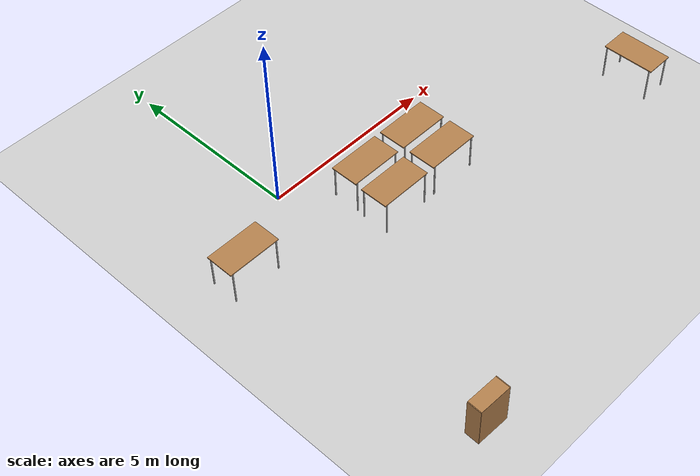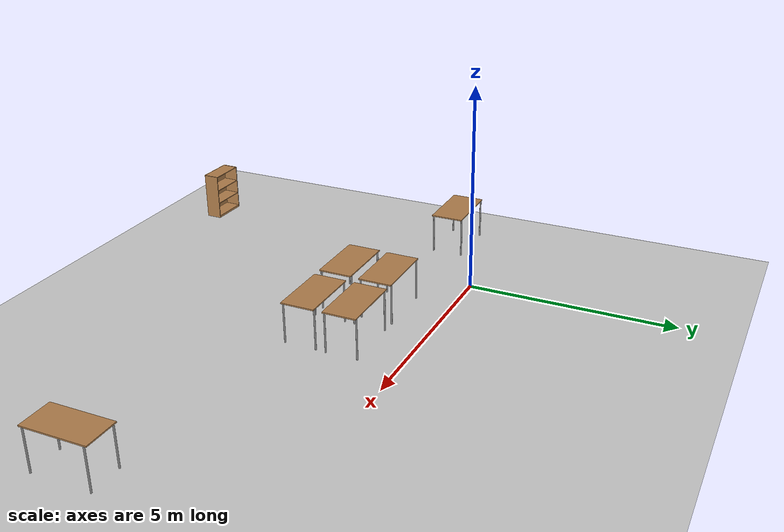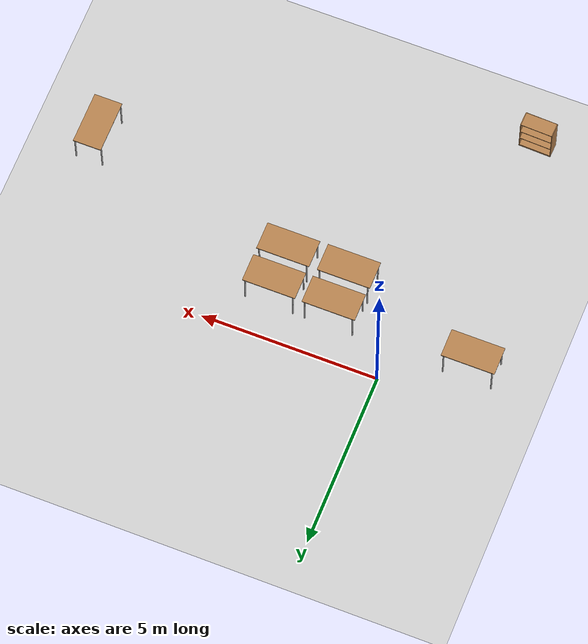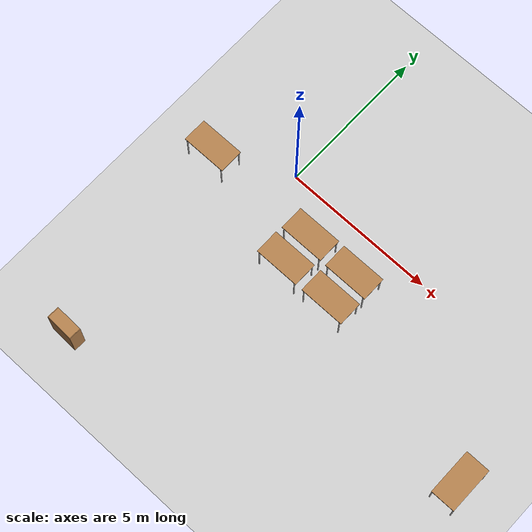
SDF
<sdf version="1.6">
 <world name="default">
  <model name="ground_plane">
   <static>1</static>
   <link name="link">
    <collision name="collision">
     <geometry><plane><normal>0 0 1</normal><size>100 100</size></plane></geometry>
     <surface>
      <contact><collide_bitmask>65535</collide_bitmask></contact>
      <friction><ode><mu>100</mu><mu2>50</mu2></ode></friction>
     </surface>
    </collision>
    <visual name="visual">
     <cast_shadows>0</cast_shadows>
     <geometry><plane><normal>0 0 1</normal><size>100 100</size></plane></geometry>
     <material>
      <script><uri>file://media/materials/scripts/gazebo.material</uri><name>Gazebo/Grey</name></script>
     </material>
    </visual>
   </link>
  </model>
  <model name="table_2">
   <static>1</static>
   <link name="link">
    <collision name="surface">
     <pose>0 0 1 0 -0 0</pose>
     <geometry><box><size>1.5 0.8 0.03</size></box></geometry>
     <surface><friction><ode><mu>0.6</mu><mu2>0.6</mu2></ode></friction></surface>
    </collision>
    <visual name="visual1">
     <pose>0 0 1 0 -0 0</pose>
     <geometry><box><size>1.5 0.8 0.03</size></box></geometry>
     <material>
      <script><uri>file://media/materials/scripts/gazebo.material</uri><name>Gazebo/Wood</name></script>
     </material>
    </visual>
    <collision name="front_left_leg">
     <pose>0.68 0.38 0.5 0 -0 0</pose>
     <geometry><cylinder><radius>0.02</radius><length>1</length></cylinder></geometry>
    </collision>
    <visual name="front_left_leg">
     <pose>0.68 0.38 0.5 0 -0 0</pose>
     <geometry><cylinder><radius>0.02</radius><length>1</length></cylinder></geometry>
     <material>
      <script><uri>file://media/materials/scripts/gazebo.material</uri><name>Gazebo/Grey</name></script>
     </material>
    </visual>
    <collision name="front_right_leg">
     <pose>0.68 -0.38 0.5 0 -0 0</pose>
     <geometry><cylinder><radius>0.02</radius><length>1</length></cylinder></geometry>
    </collision>
    <visual name="front_right_leg">
     <pose>0.68 -0.38 0.5 0 -0 0</pose>
     <geometry><cylinder><radius>0.02</radius><length>1</length></cylinder></geometry>
     <material>
      <script><uri>file://media/materials/scripts/gazebo.material</uri><name>Gazebo/Grey</name></script>
     </material>
    </visual>
    <collision name="back_right_leg">
     <pose>-0.68 -0.38 0.5 0 -0 0</pose>
     <geometry><cylinder><radius>0.02</radius><length>1</length></cylinder></geometry>
    </collision>
    <visual name="back_right_leg">
     <pose>-0.68 -0.38 0.5 0 -0 0</pose>
     <geometry><cylinder><radius>0.02</radius><length>1</length></cylinder></geometry>
     <material>
      <script><uri>file://media/materials/scripts/gazebo.material</uri><name>Gazebo/Grey</name></script>
     </material>
    </visual>
    <collision name="back_left_leg">
     <pose>-0.68 0.38 0.5 0 -0 0</pose>
     <geometry><cylinder><radius>0.02</radius><length>1</length></cylinder></geometry>
    </collision>
    <visual name="back_left_leg">
     <pose>-0.68 0.38 0.5 0 -0 0</pose>
     <geometry><cylinder><radius>0.02</radius><length>1</length></cylinder></geometry>
     <material>
      <script><uri>file://media/materials/scripts/gazebo.material</uri><name>Gazebo/Grey</name></script>
     </material>
    </visual>
   </link>
   <pose>-2.20724 -1.23414 0 0 -0 0</pose>
  </model>
  <model name="table_3">
   <static>1</static>
   <link name="link">
    <collision name="surface">
     <pose>0 0 1 0 -0 0</pose>
     <geometry><box><size>1.5 0.8 0.03</size></box></geometry>
     <surface><friction><ode><mu>0.6</mu><mu2>0.6</mu2></ode></friction></surface>
    </collision>
    <visual name="visual1">
     <pose>0 0 1 0 -0 0</pose>
     <geometry><box><size>1.5 0.8 0.03</size></box></geometry>
     <material>
      <script><uri>file://media/materials/scripts/gazebo.material</uri><name>Gazebo/Wood</name></script>
     </material>
    </visual>
    <collision name="front_left_leg">
     <pose>0.68 0.38 0.5 0 -0 0</pose>
     <geometry><cylinder><radius>0.02</radius><length>1</length></cylinder></geometry>
    </collision>
    <visual name="front_left_leg">
     <pose>0.68 0.38 0.5 0 -0 0</pose>
     <geometry><cylinder><radius>0.02</radius><length>1</length></cylinder></geometry>
     <material>
      <script><uri>file://media/materials/scripts/gazebo.material</uri><name>Gazebo/Grey</name></script>
     </material>
    </visual>
    <collision name="front_right_leg">
     <pose>0.68 -0.38 0.5 0 -0 0</pose>
     <geometry><cylinder><radius>0.02</radius><length>1</length></cylinder></geometry>
    </collision>
    <visual name="front_right_leg">
     <pose>0.68 -0.38 0.5 0 -0 0</pose>
     <geometry><cylinder><radius>0.02</radius><length>1</length></cylinder></geometry>
     <material>
      <script><uri>file://media/materials/scripts/gazebo.material</uri><name>Gazebo/Grey</name></script>
     </material>
    </visual>
    <collision name="back_right_leg">
     <pose>-0.68 -0.38 0.5 0 -0 0</pose>
     <geometry><cylinder><radius>0.02</radius><length>1</length></cylinder></geometry>
    </collision>
    <visual name="back_right_leg">
     <pose>-0.68 -0.38 0.5 0 -0 0</pose>
     <geometry><cylinder><radius>0.02</radius><length>1</length></cylinder></geometry>
     <material>
      <script><uri>file://media/materials/scripts/gazebo.material</uri><name>Gazebo/Grey</name></script>
     </material>
    </visual>
    <collision name="back_left_leg">
     <pose>-0.68 0.38 0.5 0 -0 0</pose>
     <geometry><cylinder><radius>0.02</radius><length>1</length></cylinder></geometry>
    </collision>
    <visual name="back_left_leg">
     <pose>-0.68 0.38 0.5 0 -0 0</pose>
     <geometry><cylinder><radius>0.02</radius><length>1</length></cylinder></geometry>
     <material>
      <script><uri>file://media/materials/scripts/gazebo.material</uri><name>Gazebo/Grey</name></script>
     </material>
    </visual>
   </link>
   <pose>1.75922 -1.33689 0 0 -0 0</pose>
  </model>
  <model name="table_4">
   <static>1</static>
   <link name="link">
    <collision name="surface">
     <pose>0 0 1 0 -0 0</pose>
     <geometry><box><size>1.5 0.8 0.03</size></box></geometry>
     <surface><friction><ode><mu>0.6</mu><mu2>0.6</mu2></ode></friction></surface>
    </collision>
    <visual name="visual1">
     <pose>0 0 1 0 -0 0</pose>
     <geometry><box><size>1.5 0.8 0.03</size></box></geometry>
     <material>
      <script><uri>file://media/materials/scripts/gazebo.material</uri><name>Gazebo/Wood</name></script>
     </material>
    </visual>
    <collision name="front_left_leg">
     <pose>0.68 0.38 0.5 0 -0 0</pose>
     <geometry><cylinder><radius>0.02</radius><length>1</length></cylinder></geometry>
    </collision>
    <visual name="front_left_leg">
     <pose>0.68 0.38 0.5 0 -0 0</pose>
     <geometry><cylinder><radius>0.02</radius><length>1</length></cylinder></geometry>
     <material>
      <script><uri>file://media/materials/scripts/gazebo.material</uri><name>Gazebo/Grey</name></script>
     </material>
    </visual>
    <collision name="front_right_leg">
     <pose>0.68 -0.38 0.5 0 -0 0</pose>
     <geometry><cylinder><radius>0.02</radius><length>1</length></cylinder></geometry>
    </collision>
    <visual name="front_right_leg">
     <pose>0.68 -0.38 0.5 0 -0 0</pose>
     <geometry><cylinder><radius>0.02</radius><length>1</length></cylinder></geometry>
     <material>
      <script><uri>file://media/materials/scripts/gazebo.material</uri><name>Gazebo/Grey</name></script>
     </material>
    </visual>
    <collision name="back_right_leg">
     <pose>-0.68 -0.38 0.5 0 -0 0</pose>
     <geometry><cylinder><radius>0.02</radius><length>1</length></cylinder></geometry>
    </collision>
    <visual name="back_right_leg">
     <pose>-0.68 -0.38 0.5 0 -0 0</pose>
     <geometry><cylinder><radius>0.02</radius><length>1</length></cylinder></geometry>
     <material>
      <script><uri>file://media/materials/scripts/gazebo.material</uri><name>Gazebo/Grey</name></script>
     </material>
    </visual>
    <collision name="back_left_leg">
     <pose>-0.68 0.38 0.5 0 -0 0</pose>
     <geometry><cylinder><radius>0.02</radius><length>1</length></cylinder></geometry>
    </collision>
    <visual name="back_left_leg">
     <pose>-0.68 0.38 0.5 0 -0 0</pose>
     <geometry><cylinder><radius>0.02</radius><length>1</length></cylinder></geometry>
     <material>
      <script><uri>file://media/materials/scripts/gazebo.material</uri><name>Gazebo/Grey</name></script>
     </material>
    </visual>
   </link>
   <pose>3.45333 -2.3478 0 0 -0 0</pose>
  </model>
  <model name="table_5">
   <static>1</static>
   <link name="link">
    <collision name="surface">
     <pose>0 0 1 0 -0 0</pose>
     <geometry><box><size>1.5 0.8 0.03</size></box></geometry>
     <surface><friction><ode><mu>0.6</mu><mu2>0.6</mu2></ode></friction></surface>
    </collision>
    <visual name="visual1">
     <pose>0 0 1 0 -0 0</pose>
     <geometry><box><size>1.5 0.8 0.03</size></box></geometry>
     <material>
      <script><uri>file://media/materials/scripts/gazebo.material</uri><name>Gazebo/Wood</name></script>
     </material>
    </visual>
    <collision name="front_left_leg">
     <pose>0.68 0.38 0.5 0 -0 0</pose>
     <geometry><cylinder><radius>0.02</radius><length>1</length></cylinder></geometry>
    </collision>
    <visual name="front_left_leg">
     <pose>0.68 0.38 0.5 0 -0 0</pose>
     <geometry><cylinder><radius>0.02</radius><length>1</length></cylinder></geometry>
     <material>
      <script><uri>file://media/materials/scripts/gazebo.material</uri><name>Gazebo/Grey</name></script>
     </material>
    </visual>
    <collision name="front_right_leg">
     <pose>0.68 -0.38 0.5 0 -0 0</pose>
     <geometry><cylinder><radius>0.02</radius><length>1</length></cylinder></geometry>
    </collision>
    <visual name="front_right_leg">
     <pose>0.68 -0.38 0.5 0 -0 0</pose>
     <geometry><cylinder><radius>0.02</radius><length>1</length></cylinder></geometry>
     <material>
      <script><uri>file://media/materials/scripts/gazebo.material</uri><name>Gazebo/Grey</name></script>
     </material>
    </visual>
    <collision name="back_right_leg">
     <pose>-0.68 -0.38 0.5 0 -0 0</pose>
     <geometry><cylinder><radius>0.02</radius><length>1</length></cylinder></geometry>
    </collision>
    <visual name="back_right_leg">
     <pose>-0.68 -0.38 0.5 0 -0 0</pose>
     <geometry><cylinder><radius>0.02</radius><length>1</length></cylinder></geometry>
     <material>
      <script><uri>file://media/materials/scripts/gazebo.material</uri><name>Gazebo/Grey</name></script>
     </material>
    </visual>
    <collision name="back_left_leg">
     <pose>-0.68 0.38 0.5 0 -0 0</pose>
     <geometry><cylinder><radius>0.02</radius><length>1</length></cylinder></geometry>
    </collision>
    <visual name="back_left_leg">
     <pose>-0.68 0.38 0.5 0 -0 0</pose>
     <geometry><cylinder><radius>0.02</radius><length>1</length></cylinder></geometry>
     <material>
      <script><uri>file://media/materials/scripts/gazebo.material</uri><name>Gazebo/Grey</name></script>
     </material>
    </visual>
   </link>
   <pose>1.72828 -2.35191 0 0 -0 0</pose>
  </model>
  <model name="table_6">
   <static>1</static>
   <link name="link">
    <collision name="surface">
     <pose>0 0 1 0 -0 0</pose>
     <geometry><box><size>1.5 0.8 0.03</size></box></geometry>
     <surface><friction><ode><mu>0.6</mu><mu2>0.6</mu2></ode></friction></surface>
    </collision>
    <visual name="visual1">
     <pose>0 0 1 0 -0 0</pose>
     <geometry><box><size>1.5 0.8 0.03</size></box></geometry>
     <material>
      <script><uri>file://media/materials/scripts/gazebo.material</uri><name>Gazebo/Wood</name></script>
     </material>
    </visual>
    <collision name="front_left_leg">
     <pose>0.68 0.38 0.5 0 -0 0</pose>
     <geometry><cylinder><radius>0.02</radius><length>1</length></cylinder></geometry>
    </collision>
    <visual name="front_left_leg">
     <pose>0.68 0.38 0.5 0 -0 0</pose>
     <geometry><cylinder><radius>0.02</radius><length>1</length></cylinder></geometry>
     <material>
      <script><uri>file://media/materials/scripts/gazebo.material</uri><name>Gazebo/Grey</name></script>
     </material>
    </visual>
    <collision name="front_right_leg">
     <pose>0.68 -0.38 0.5 0 -0 0</pose>
     <geometry><cylinder><radius>0.02</radius><length>1</length></cylinder></geometry>
    </collision>
    <visual name="front_right_leg">
     <pose>0.68 -0.38 0.5 0 -0 0</pose>
     <geometry><cylinder><radius>0.02</radius><length>1</length></cylinder></geometry>
     <material>
      <script><uri>file://media/materials/scripts/gazebo.material</uri><name>Gazebo/Grey</name></script>
     </material>
    </visual>
    <collision name="back_right_leg">
     <pose>-0.68 -0.38 0.5 0 -0 0</pose>
     <geometry><cylinder><radius>0.02</radius><length>1</length></cylinder></geometry>
    </collision>
    <visual name="back_right_leg">
     <pose>-0.68 -0.38 0.5 0 -0 0</pose>
     <geometry><cylinder><radius>0.02</radius><length>1</length></cylinder></geometry>
     <material>
      <script><uri>file://media/materials/scripts/gazebo.material</uri><name>Gazebo/Grey</name></script>
     </material>
    </visual>
    <collision name="back_left_leg">
     <pose>-0.68 0.38 0.5 0 -0 0</pose>
     <geometry><cylinder><radius>0.02</radius><length>1</length></cylinder></geometry>
    </collision>
    <visual name="back_left_leg">
     <pose>-0.68 0.38 0.5 0 -0 0</pose>
     <geometry><cylinder><radius>0.02</radius><length>1</length></cylinder></geometry>
     <material>
      <script><uri>file://media/materials/scripts/gazebo.material</uri><name>Gazebo/Grey</name></script>
     </material>
    </visual>
   </link>
   <pose>3.45573 -1.34424 0 0 -0 0</pose>
  </model>
  <model name="table_11">
   <static>1</static>
   <link name="link">
    <collision name="surface">
     <pose>0 0 1 0 -0 0</pose>
     <geometry><box><size>1.5 0.8 0.03</size></box></geometry>
     <surface><friction><ode><mu>0.6</mu><mu2>0.6</mu2></ode></friction></surface>
    </collision>
    <visual name="visual1">
     <pose>0 0 1 0 -0 0</pose>
     <geometry><box><size>1.5 0.8 0.03</size></box></geometry>
     <material>
      <script><uri>file://media/materials/scripts/gazebo.material</uri><name>Gazebo/Wood</name></script>
     </material>
    </visual>
    <collision name="front_left_leg">
     <pose>0.68 0.38 0.5 0 -0 0</pose>
     <geometry><cylinder><radius>0.02</radius><length>1</length></cylinder></geometry>
    </collision>
    <visual name="front_left_leg">
     <pose>0.68 0.38 0.5 0 -0 0</pose>
     <geometry><cylinder><radius>0.02</radius><length>1</length></cylinder></geometry>
     <material>
      <script><uri>file://media/materials/scripts/gazebo.material</uri><name>Gazebo/Grey</name></script>
     </material>
    </visual>
    <collision name="front_right_leg">
     <pose>0.68 -0.38 0.5 0 -0 0</pose>
     <geometry><cylinder><radius>0.02</radius><length>1</length></cylinder></geometry>
    </collision>
    <visual name="front_right_leg">
     <pose>0.68 -0.38 0.5 0 -0 0</pose>
     <geometry><cylinder><radius>0.02</radius><length>1</length></cylinder></geometry>
     <material>
      <script><uri>file://media/materials/scripts/gazebo.material</uri><name>Gazebo/Grey</name></script>
     </material>
    </visual>
    <collision name="back_right_leg">
     <pose>-0.68 -0.38 0.5 0 -0 0</pose>
     <geometry><cylinder><radius>0.02</radius><length>1</length></cylinder></geometry>
    </collision>
    <visual name="back_right_leg">
     <pose>-0.68 -0.38 0.5 0 -0 0</pose>
     <geometry><cylinder><radius>0.02</radius><length>1</length></cylinder></geometry>
     <material>
      <script><uri>file://media/materials/scripts/gazebo.material</uri><name>Gazebo/Grey</name></script>
     </material>
    </visual>
    <collision name="back_left_leg">
     <pose>-0.68 0.38 0.5 0 -0 0</pose>
     <geometry><cylinder><radius>0.02</radius><length>1</length></cylinder></geometry>
    </collision>
    <visual name="back_left_leg">
     <pose>-0.68 0.38 0.5 0 -0 0</pose>
     <geometry><cylinder><radius>0.02</radius><length>1</length></cylinder></geometry>
     <material>
      <script><uri>file://media/materials/scripts/gazebo.material</uri><name>Gazebo/Grey</name></script>
     </material>
    </visual>
   </link>
   <pose>9.55904 -3.8559 0 0 0 -1.57014</pose>
  </model>
  <model name="bookshelf">
   <static>1</static>
   <link name="link">
    <inertial><mass>1</mass></inertial>
    <collision name="back">
     <pose>0 0.005 0.6 0 -0 0</pose>
     <geometry><box><size>0.9 0.01 1.2</size></box></geometry>
    </collision>
    <visual name="visual1">
     <pose>0 0.005 0.6 0 -0 0</pose>
     <geometry><box><size>0.9 0.01 1.2</size></box></geometry>
     <material>
      <script><uri>file://media/materials/scripts/gazebo.material</uri><name>Gazebo/Wood</name></script>
     </material>
    </visual>
    <collision name="left_side">
     <pose>0.45 -0.195 0.6 0 -0 0</pose>
     <geometry><box><size>0.02 0.4 1.2</size></box></geometry>
    </collision>
    <visual name="visual2">
     <pose>0.45 -0.195 0.6 0 -0 0</pose>
     <geometry><box><size>0.02 0.4 1.2</size></box></geometry>
     <material>
      <script><uri>file://media/materials/scripts/gazebo.material</uri><name>Gazebo/Wood</name></script>
     </material>
    </visual>
    <collision name="right_side">
     <pose>-0.45 -0.195 0.6 0 -0 0</pose>
     <geometry><box><size>0.02 0.4 1.2</size></box></geometry>
    </collision>
    <visual name="visual3">
     <pose>-0.45 -0.195 0.6 0 -0 0</pose>
     <geometry><box><size>0.02 0.4 1.2</size></box></geometry>
     <material>
      <script><uri>file://media/materials/scripts/gazebo.material</uri><name>Gazebo/Wood</name></script>
     </material>
    </visual>
    <collision name="bottom">
     <pose>0 -0.195 0.03 0 -0 0</pose>
     <geometry><box><size>0.88 0.4 0.06</size></box></geometry>
    </collision>
    <visual name="visual4">
     <pose>0 -0.195 0.03 0 -0 0</pose>
     <geometry><box><size>0.88 0.4 0.06</size></box></geometry>
     <material>
      <script><uri>file://media/materials/scripts/gazebo.material</uri><name>Gazebo/Wood</name></script>
     </material>
    </visual>
    <collision name="top">
     <pose>0 -0.195 1.19 0 -0 0</pose>
     <geometry><box><size>0.88 0.4 0.02</size></box></geometry>
    </collision>
    <visual name="visual5">
     <pose>0 -0.195 1.19 0 -0 0</pose>
     <geometry><box><size>0.88 0.4 0.02</size></box></geometry>
     <material>
      <script><uri>file://media/materials/scripts/gazebo.material</uri><name>Gazebo/Wood</name></script>
     </material>
    </visual>
    <collision name="low_shelf">
     <pose>0 -0.195 0.43 0 -0 0</pose>
     <geometry><box><size>0.88 0.4 0.02</size></box></geometry>
    </collision>
    <visual name="visual6">
     <pose>0 -0.195 0.43 0 -0 0</pose>
     <geometry><box><size>0.88 0.4 0.02</size></box></geometry>
     <material>
      <script><uri>file://media/materials/scripts/gazebo.material</uri><name>Gazebo/Wood</name></script>
     </material>
    </visual>
    <collision name="high_shelf">
     <pose>0 -0.195 0.8 0 -0 0</pose>
     <geometry><box><size>0.88 0.4 0.02</size></box></geometry>
    </collision>
    <visual name="visual7">
     <pose>0 -0.195 0.8 0 -0 0</pose>
     <geometry><box><size>0.88 0.4 0.02</size></box></geometry>
     <material>
      <script><uri>file://media/materials/scripts/gazebo.material</uri><name>Gazebo/Wood</name></script>
     </material>
    </visual>
   </link>
   <pose>-1.50191 -8.25029 0 0 -0 3.11086</pose>
  </model>
 </world>
</sdf>
